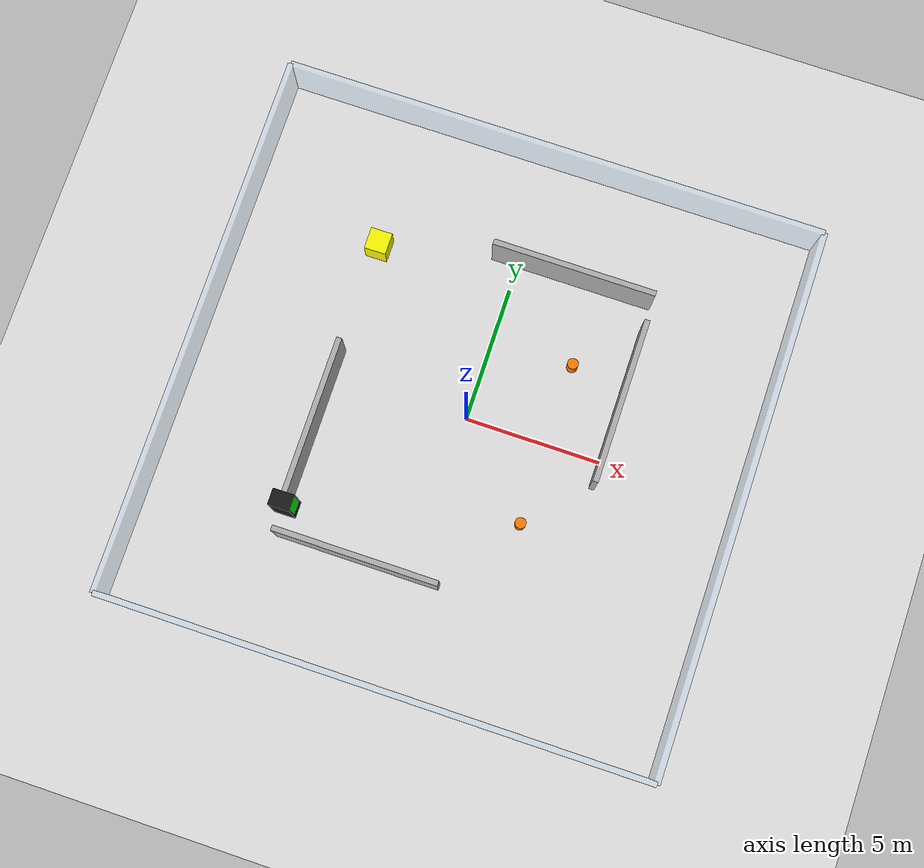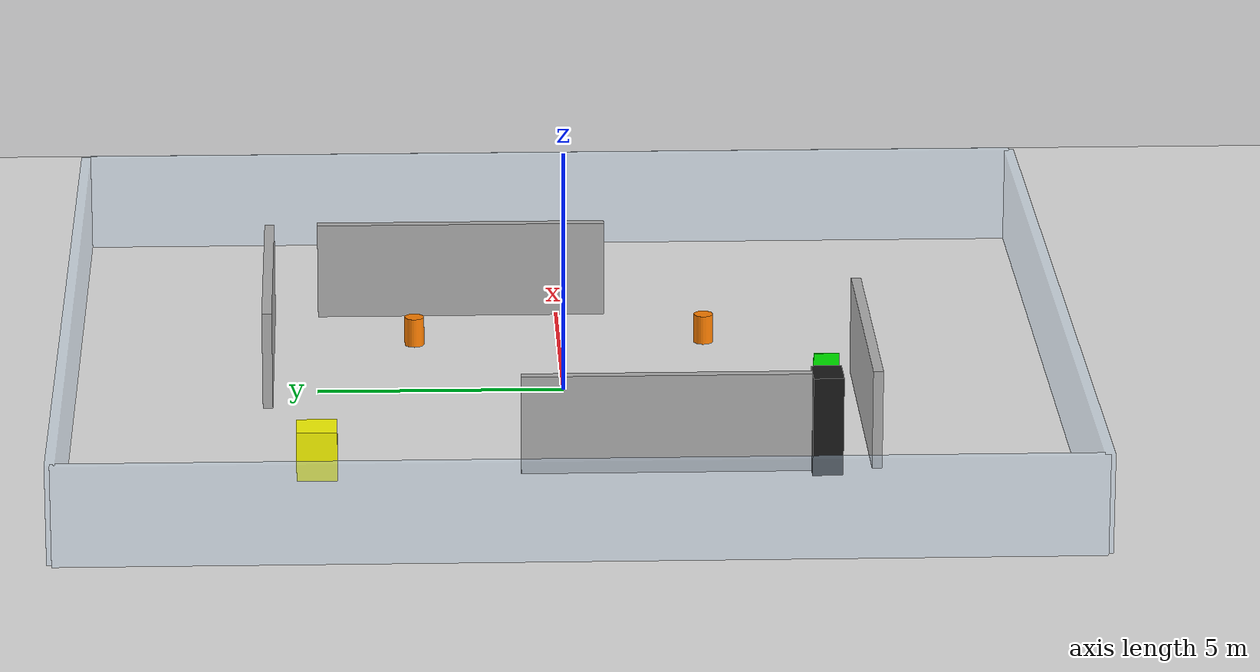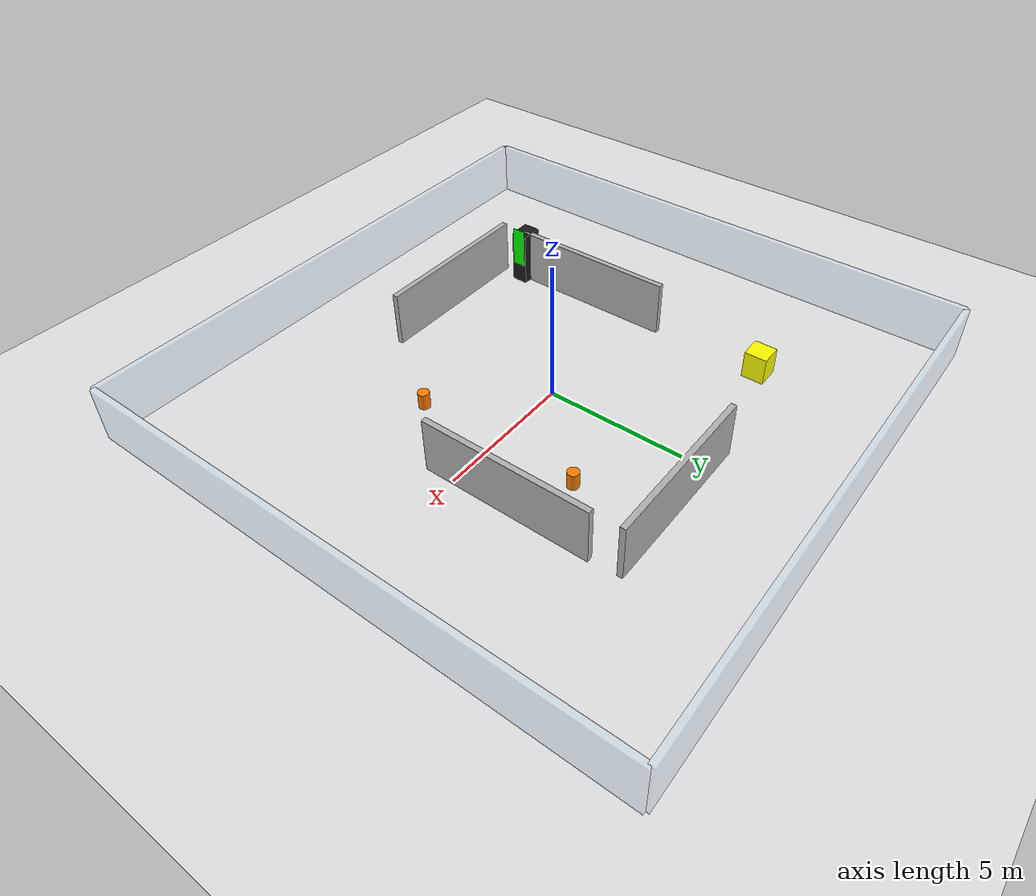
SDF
<?xml version="1.0" ?>
<sdf version="1.8">
  <world name="future_lab">
    <physics name="1ms" type="ignored">
      <max_step_size>0.001</max_step_size>
      <real_time_factor>1.0</real_time_factor>
    </physics>
    <plugin
      filename="gz-sim-physics-system"
      name="gz::sim::systems::Physics">
    </plugin>
    <plugin
      filename="gz-sim-user-commands-system"
      name="gz::sim::systems::UserCommands">
    </plugin>
    <plugin
      filename="gz-sim-scene-broadcaster-system"
      name="gz::sim::systems::SceneBroadcaster">
    </plugin>
    <plugin
      filename="gz-sim-sensors-system"
      name="gz::sim::systems::Sensors">
      <render_engine>ogre2</render_engine>
    </plugin>

    <!-- Lab Lighting: Cool White and Bright -->
    <light type="directional" name="lab_light_1">
      <cast_shadows>true</cast_shadows>
      <pose>0 0 10 0 0 0</pose>
      <diffuse>0.9 0.9 1.0 1</diffuse>
      <specular>0.5 0.5 0.5 1</specular>
      <attenuation>
        <range>1000</range>
        <constant>0.9</constant>
        <linear>0.01</linear>
        <quadratic>0.001</quadratic>
      </attenuation>
      <direction>-0.5 0.1 -0.9</direction>
    </light>

    <light type="point" name="lab_light_2">
      <pose>5 5 4 0 0 0</pose>
      <diffuse>0.8 0.8 1.0 1</diffuse>
      <attenuation>
        <range>20</range>
      </attenuation>
    </light>

    <!-- Ground: Clean White Tiles -->
    <model name="ground_plane">
      <static>true</static>
      <link name="link">
        <collision name="collision">
          <geometry>
            <plane>
              <normal>0 0 1</normal>
              <size>100 100</size>
            </plane>
          </geometry>
        </collision>
        <visual name="visual">
          <geometry>
            <plane>
              <normal>0 0 1</normal>
              <size>100 100</size>
            </plane>
          </geometry>
          <material>
            <ambient>0.9 0.9 0.9 1</ambient>
            <diffuse>0.9 0.9 0.9 1</diffuse>
            <specular>0.5 0.5 0.5 1</specular>
          </material>
        </visual>
      </link>
    </model>

    <!-- Boundary Walls (Glass-like) -->
    <model name="wall_north">
      <static>true</static>
      <pose>0 10 1 0 0 0</pose>
      <link name="link">
        <visual name="visual">
          <geometry><box><size>20 0.2 2</size></box></geometry>
          <material>
            <ambient>0.8 0.9 1.0 0.4</ambient>
            <diffuse>0.8 0.9 1.0 0.4</diffuse>
          </material>
        </visual>
        <collision name="collision">
          <geometry><box><size>20 0.2 2</size></box></geometry>
        </collision>
      </link>
    </model>
    <model name="wall_south">
      <static>true</static>
      <pose>0 -10 1 0 0 0</pose>
      <link name="link">
        <visual name="visual">
          <geometry><box><size>20 0.2 2</size></box></geometry>
          <material>
            <ambient>0.8 0.9 1.0 0.4</ambient>
            <diffuse>0.8 0.9 1.0 0.4</diffuse>
          </material>
        </visual>
        <collision name="collision">
          <geometry><box><size>20 0.2 2</size></box></geometry>
        </collision>
      </link>
    </model>
    <model name="wall_east">
      <static>true</static>
      <pose>10 0 1 0 0 0</pose>
      <link name="link">
        <visual name="visual">
          <geometry><box><size>0.2 20 2</size></box></geometry>
          <material>
            <ambient>0.8 0.9 1.0 0.4</ambient>
            <diffuse>0.8 0.9 1.0 0.4</diffuse>
          </material>
        </visual>
        <collision name="collision">
          <geometry><box><size>0.2 20 2</size></box></geometry>
        </collision>
      </link>
    </model>
    <model name="wall_west">
      <static>true</static>
      <pose>-10 0 1 0 0 0</pose>
      <link name="link">
        <visual name="visual">
          <geometry><box><size>0.2 20 2</size></box></geometry>
          <material>
            <ambient>0.8 0.9 1.0 0.4</ambient>
            <diffuse>0.8 0.9 1.0 0.4</diffuse>
          </material>
        </visual>
        <collision name="collision">
          <geometry><box><size>0.2 20 2</size></box></geometry>
        </collision>
      </link>
    </model>

    <!-- MAZE WALLS -->
    <model name="maze_wall_1">
      <static>true</static>
      <pose>5 2 1 0 0 0</pose>
      <link name="link">
        <visual name="visual">
          <geometry><box><size>0.2 6 2</size></box></geometry>
          <material><ambient>0.7 0.7 0.7 1</ambient><diffuse>0.7 0.7 0.7 1</diffuse></material>
        </visual>
        <collision name="collision">
          <geometry><box><size>0.2 6 2</size></box></geometry>
        </collision>
      </link>
    </model>

    <model name="maze_wall_2">
      <static>true</static>
      <pose>-5 -2 1 0 0 0</pose>
      <link name="link">
        <visual name="visual">
          <geometry><box><size>0.2 6 2</size></box></geometry>
          <material><ambient>0.7 0.7 0.7 1</ambient><diffuse>0.7 0.7 0.7 1</diffuse></material>
        </visual>
        <collision name="collision">
          <geometry><box><size>0.2 6 2</size></box></geometry>
        </collision>
      </link>
    </model>

    <model name="maze_wall_3">
      <static>true</static>
      <pose>2 6 1 0 0 1.57</pose>
      <link name="link">
        <visual name="visual">
          <geometry><box><size>0.2 6 2</size></box></geometry>
          <material><ambient>0.7 0.7 0.7 1</ambient><diffuse>0.7 0.7 0.7 1</diffuse></material>
        </visual>
        <collision name="collision">
          <geometry><box><size>0.2 6 2</size></box></geometry>
        </collision>
      </link>
    </model>

    <model name="maze_wall_4">
      <static>true</static>
      <pose>-2 -6 1 0 0 1.57</pose>
      <link name="link">
        <visual name="visual">
          <geometry><box><size>0.2 6 2</size></box></geometry>
          <material><ambient>0.7 0.7 0.7 1</ambient><diffuse>0.7 0.7 0.7 1</diffuse></material>
        </visual>
        <collision name="collision">
          <geometry><box><size>0.2 6 2</size></box></geometry>
        </collision>
      </link>
    </model>

    <!-- Lab Equipment / Obstacles -->

    <!-- Central Station REMOVED -->

    <!-- Safety Cone 1 -->
    <model name="cone_1">
      <static>true</static>
      <pose>3 3 0.3 0 0 0</pose>
      <link name="link">
        <visual name="visual">
          <geometry><cylinder><radius>0.2</radius><length>0.6</length></cylinder></geometry>
          <material><ambient>1 0.5 0 1</ambient><diffuse>1 0.5 0 1</diffuse></material>
        </visual>
        <collision name="collision">
           <geometry><cylinder><radius>0.2</radius><length>0.6</length></cylinder></geometry>
        </collision>
      </link>
    </model>

    <!-- Safety Cone 2 -->
    <model name="cone_2">
      <static>true</static>
      <pose>3 -3 0.3 0 0 0</pose>
      <link name="link">
        <visual name="visual">
          <geometry><cylinder><radius>0.2</radius><length>0.6</length></cylinder></geometry>
          <material><ambient>1 0.5 0 1</ambient><diffuse>1 0.5 0 1</diffuse></material>
        </visual>
        <collision name="collision">
           <geometry><cylinder><radius>0.2</radius><length>0.6</length></cylinder></geometry>
        </collision>
      </link>
    </model>

    <!-- Biohazard Bin -->
    <model name="biohazard_bin">
      <static>true</static>
      <pose>-5 5 0.5 0 0 0</pose>
      <link name="link">
        <visual name="visual">
          <geometry><box><size>0.8 0.8 1</size></box></geometry>
          <material><ambient>1 1 0 1</ambient><diffuse>1 1 0 1</diffuse></material>
        </visual>
        <collision name="collision">
          <geometry><box><size>0.8 0.8 1</size></box></geometry>
        </collision>
      </link>
    </model>

    <!-- Server Rack -->
    <model name="server_rack">
      <static>true</static>
      <pose>-5 -5 1 0 0 0</pose>
      <link name="link">
        <visual name="visual">
          <geometry><box><size>0.8 0.6 2</size></box></geometry>
          <material><ambient>0.1 0.1 0.1 1</ambient><diffuse>0.1 0.1 0.1 1</diffuse></material>
        </visual>
        <visual name="lights">
           <pose>0.41 0 0.5 0 0 0</pose>
           <geometry><box><size>0.01 0.5 1.5</size></box></geometry>
           <material><ambient>0 1 0 1</ambient><diffuse>0 1 0 1</diffuse><emissive>0 1 0 1</emissive></material>
        </visual>
        <collision name="collision">
          <geometry><box><size>0.8 0.6 2</size></box></geometry>
        </collision>
      </link>
    </model>

  </world>
</sdf>
